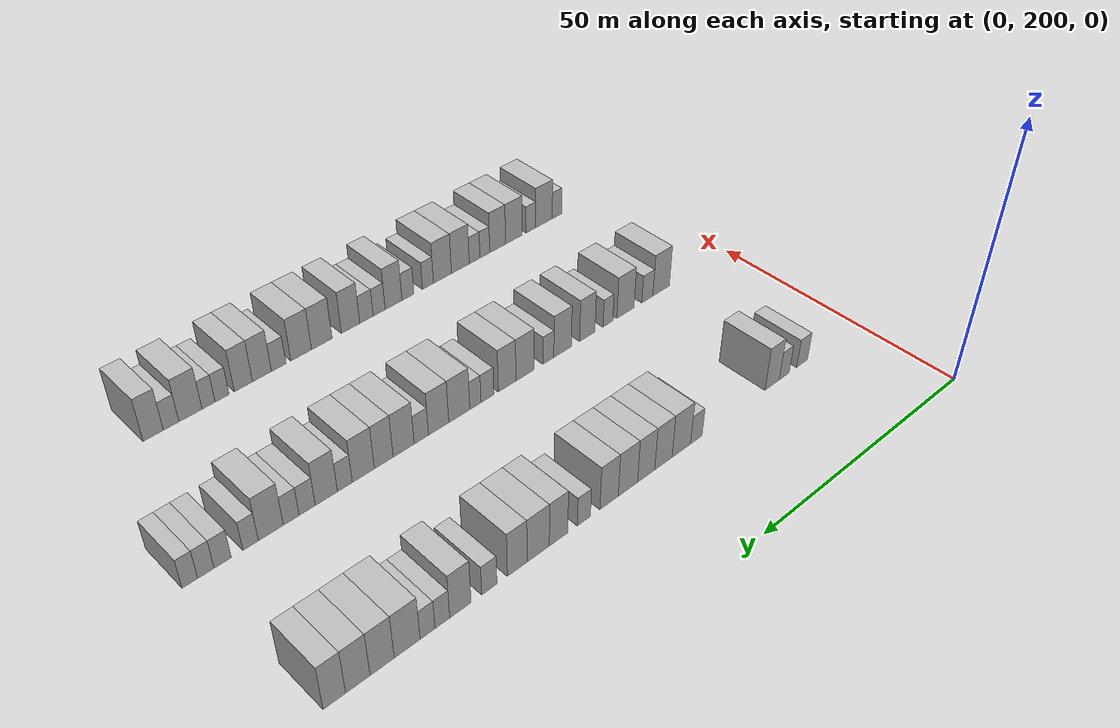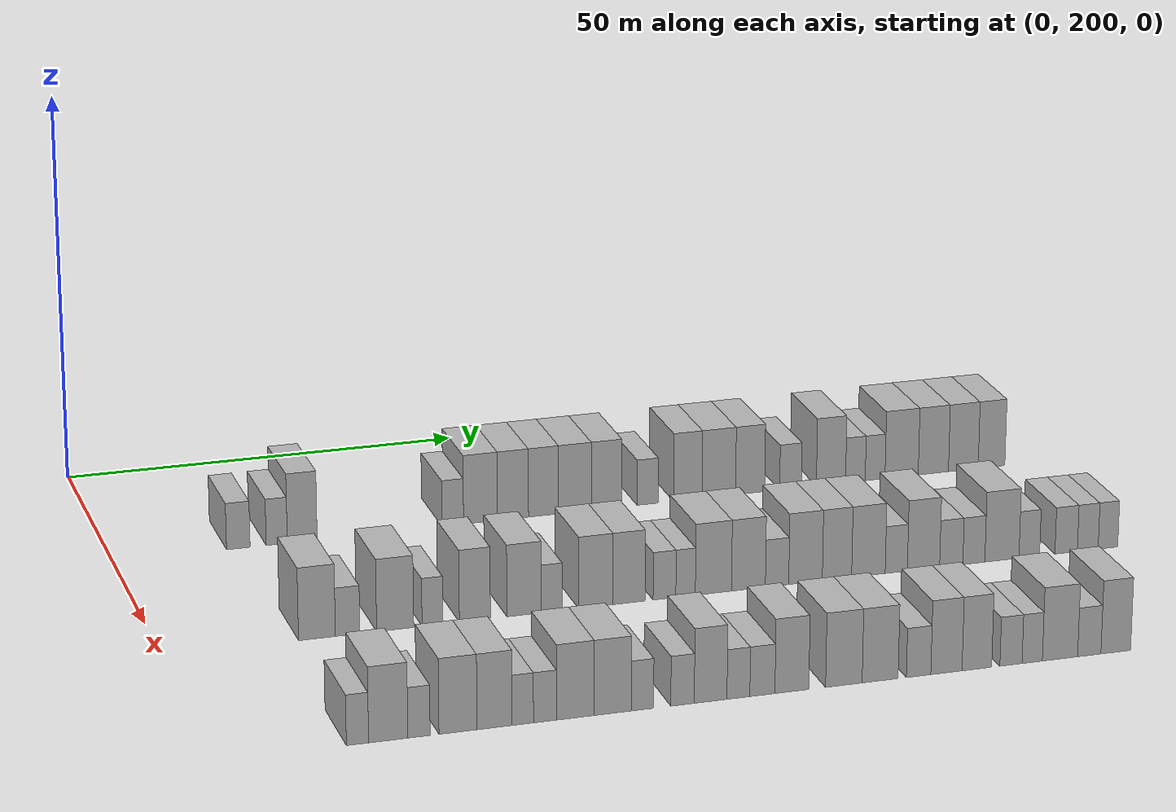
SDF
<sdf version="1.6">
 <world name="default">
  <model name="building_168">
   <static>1</static>
   <pose>25.0000 215.4634 0 0.000000 0.000000 0.000000</pose>
   <link name="link">
    <pose>0 0 3.00 0 0 0</pose>
    <collision name="collision"><geometry><box><size>10.0000 2.9206 6.0000</size></box></geometry></collision>
    <visual name="visual">
     <cast_shadows>0</cast_shadows>
     <geometry><box><size>10.0000 2.9206 6.0000</size></box></geometry>
     <material>
      <script>
       <uri>model://HANNAS_wall/materials/scripts</uri>
       <uri>model://HANNAS_wall/materials/textures</uri>
       <name>vrc/HANNAS_wall</name>
      </script>
     </material>
    </visual>
   </link>
  </model>
  <model name="building_169">
   <static>1</static>
   <pose>25.0000 220.2405 0 0.000000 0.000000 0.000000</pose>
   <link name="link">
    <pose>0 0 3.00 0 0 0</pose>
    <collision name="collision"><geometry><box><size>10.0000 2.6336 6.0000</size></box></geometry></collision>
    <visual name="visual">
     <cast_shadows>0</cast_shadows>
     <geometry><box><size>10.0000 2.6336 6.0000</size></box></geometry>
     <material>
      <script>
       <uri>model://HANNAS_wall/materials/scripts</uri>
       <uri>model://HANNAS_wall/materials/textures</uri>
       <name>vrc/HANNAS_wall</name>
      </script>
     </material>
    </visual>
   </link>
  </model>
  <model name="building_170">
   <static>1</static>
   <pose>25.0000 223.4214 0 0.000000 0.000000 0.000000</pose>
   <link name="link">
    <pose>0 0 4.50 0 0 0</pose>
    <collision name="collision"><geometry><box><size>10.0000 3.7282 9.0000</size></box></geometry></collision>
    <visual name="visual">
     <cast_shadows>0</cast_shadows>
     <geometry><box><size>10.0000 3.7282 9.0000</size></box></geometry>
     <material>
      <script>
       <uri>model://HANNAS_wall/materials/scripts</uri>
       <uri>model://HANNAS_wall/materials/textures</uri>
       <name>vrc/HANNAS_wall</name>
      </script>
     </material>
    </visual>
   </link>
  </model>
  <model name="building_171">
   <static>1</static>
   <pose>25.0000 242.4095 0 0.000000 0.000000 0.000000</pose>
   <link name="link">
    <pose>0 0 3.00 0 0 0</pose>
    <collision name="collision"><geometry><box><size>10.0000 2.7493 6.0000</size></box></geometry></collision>
    <visual name="visual">
     <cast_shadows>0</cast_shadows>
     <geometry><box><size>10.0000 2.7493 6.0000</size></box></geometry>
     <material>
      <script>
       <uri>model://HANNAS_wall/materials/scripts</uri>
       <uri>model://HANNAS_wall/materials/textures</uri>
       <name>vrc/HANNAS_wall</name>
      </script>
     </material>
    </visual>
   </link>
  </model>
  <model name="building_172">
   <static>1</static>
   <pose>25.0000 245.9566 0 0.000000 0.000000 0.000000</pose>
   <link name="link">
    <pose>0 0 4.50 0 0 0</pose>
    <collision name="collision"><geometry><box><size>10.0000 4.3450 9.0000</size></box></geometry></collision>
    <visual name="visual">
     <cast_shadows>0</cast_shadows>
     <geometry><box><size>10.0000 4.3450 9.0000</size></box></geometry>
     <material>
      <script>
       <uri>model://HANNAS_wall/materials/scripts</uri>
       <uri>model://HANNAS_wall/materials/textures</uri>
       <name>vrc/HANNAS_wall</name>
      </script>
     </material>
    </visual>
   </link>
  </model>
  <model name="building_173">
   <static>1</static>
   <pose>25.0000 250.1196 0 0.000000 0.000000 0.000000</pose>
   <link name="link">
    <pose>0 0 4.50 0 0 0</pose>
    <collision name="collision"><geometry><box><size>10.0000 3.9809 9.0000</size></box></geometry></collision>
    <visual name="visual">
     <cast_shadows>0</cast_shadows>
     <geometry><box><size>10.0000 3.9809 9.0000</size></box></geometry>
     <material>
      <script>
       <uri>model://HANNAS_wall/materials/scripts</uri>
       <uri>model://HANNAS_wall/materials/textures</uri>
       <name>vrc/HANNAS_wall</name>
      </script>
     </material>
    </visual>
   </link>
  </model>
  <model name="building_174">
   <static>1</static>
   <pose>25.0000 254.0474 0 0.000000 0.000000 0.000000</pose>
   <link name="link">
    <pose>0 0 4.50 0 0 0</pose>
    <collision name="collision"><geometry><box><size>10.0000 3.8747 9.0000</size></box></geometry></collision>
    <visual name="visual">
     <cast_shadows>0</cast_shadows>
     <geometry><box><size>10.0000 3.8747 9.0000</size></box></geometry>
     <material>
      <script>
       <uri>model://HANNAS_wall/materials/scripts</uri>
       <uri>model://HANNAS_wall/materials/textures</uri>
       <name>vrc/HANNAS_wall</name>
      </script>
     </material>
    </visual>
   </link>
  </model>
  <model name="building_175">
   <static>1</static>
   <pose>25.0000 258.1035 0 0.000000 0.000000 0.000000</pose>
   <link name="link">
    <pose>0 0 4.50 0 0 0</pose>
    <collision name="collision"><geometry><box><size>10.0000 4.2376 9.0000</size></box></geometry></collision>
    <visual name="visual">
     <cast_shadows>0</cast_shadows>
     <geometry><box><size>10.0000 4.2376 9.0000</size></box></geometry>
     <material>
      <script>
       <uri>model://HANNAS_wall/materials/scripts</uri>
       <uri>model://HANNAS_wall/materials/textures</uri>
       <name>vrc/HANNAS_wall</name>
      </script>
     </material>
    </visual>
   </link>
  </model>
  <model name="building_176">
   <static>1</static>
   <pose>25.0000 262.1973 0 0.000000 0.000000 0.000000</pose>
   <link name="link">
    <pose>0 0 4.50 0 0 0</pose>
    <collision name="collision"><geometry><box><size>10.0000 3.9501 9.0000</size></box></geometry></collision>
    <visual name="visual">
     <cast_shadows>0</cast_shadows>
     <geometry><box><size>10.0000 3.9501 9.0000</size></box></geometry>
     <material>
      <script>
       <uri>model://HANNAS_wall/materials/scripts</uri>
       <uri>model://HANNAS_wall/materials/textures</uri>
       <name>vrc/HANNAS_wall</name>
      </script>
     </material>
    </visual>
   </link>
  </model>
  <model name="building_177">
   <static>1</static>
   <pose>25.0000 267.5508 0 0.000000 0.000000 0.000000</pose>
   <link name="link">
    <pose>0 0 3.00 0 0 0</pose>
    <collision name="collision"><geometry><box><size>10.0000 2.7569 6.0000</size></box></geometry></collision>
    <visual name="visual">
     <cast_shadows>0</cast_shadows>
     <geometry><box><size>10.0000 2.7569 6.0000</size></box></geometry>
     <material>
      <script>
       <uri>model://HANNAS_wall/materials/scripts</uri>
       <uri>model://HANNAS_wall/materials/textures</uri>
       <name>vrc/HANNAS_wall</name>
      </script>
     </material>
    </visual>
   </link>
  </model>
  <model name="building_178">
   <static>1</static>
   <pose>25.0000 272.8025 0 0.000000 0.000000 0.000000</pose>
   <link name="link">
    <pose>0 0 4.50 0 0 0</pose>
    <collision name="collision"><geometry><box><size>10.0000 3.7465 9.0000</size></box></geometry></collision>
    <visual name="visual">
     <cast_shadows>0</cast_shadows>
     <geometry><box><size>10.0000 3.7465 9.0000</size></box></geometry>
     <material>
      <script>
       <uri>model://HANNAS_wall/materials/scripts</uri>
       <uri>model://HANNAS_wall/materials/textures</uri>
       <name>vrc/HANNAS_wall</name>
      </script>
     </material>
    </visual>
   </link>
  </model>
  <model name="building_179">
   <static>1</static>
   <pose>25.0000 276.8883 0 0.000000 0.000000 0.000000</pose>
   <link name="link">
    <pose>0 0 4.50 0 0 0</pose>
    <collision name="collision"><geometry><box><size>10.0000 4.4251 9.0000</size></box></geometry></collision>
    <visual name="visual">
     <cast_shadows>0</cast_shadows>
     <geometry><box><size>10.0000 4.4251 9.0000</size></box></geometry>
     <material>
      <script>
       <uri>model://HANNAS_wall/materials/scripts</uri>
       <uri>model://HANNAS_wall/materials/textures</uri>
       <name>vrc/HANNAS_wall</name>
      </script>
     </material>
    </visual>
   </link>
  </model>
  <model name="building_180">
   <static>1</static>
   <pose>25.0000 281.0240 0 0.000000 0.000000 0.000000</pose>
   <link name="link">
    <pose>0 0 4.50 0 0 0</pose>
    <collision name="collision"><geometry><box><size>10.0000 3.8464 9.0000</size></box></geometry></collision>
    <visual name="visual">
     <cast_shadows>0</cast_shadows>
     <geometry><box><size>10.0000 3.8464 9.0000</size></box></geometry>
     <material>
      <script>
       <uri>model://HANNAS_wall/materials/scripts</uri>
       <uri>model://HANNAS_wall/materials/textures</uri>
       <name>vrc/HANNAS_wall</name>
      </script>
     </material>
    </visual>
   </link>
  </model>
  <model name="building_181">
   <static>1</static>
   <pose>25.0000 286.3899 0 0.000000 0.000000 0.000000</pose>
   <link name="link">
    <pose>0 0 3.00 0 0 0</pose>
    <collision name="collision"><geometry><box><size>10.0000 2.8854 6.0000</size></box></geometry></collision>
    <visual name="visual">
     <cast_shadows>0</cast_shadows>
     <geometry><box><size>10.0000 2.8854 6.0000</size></box></geometry>
     <material>
      <script>
       <uri>model://HANNAS_wall/materials/scripts</uri>
       <uri>model://HANNAS_wall/materials/textures</uri>
       <name>vrc/HANNAS_wall</name>
      </script>
     </material>
    </visual>
   </link>
  </model>
  <model name="building_182">
   <static>1</static>
   <pose>25.0000 291.7846 0 0.000000 0.000000 0.000000</pose>
   <link name="link">
    <pose>0 0 4.50 0 0 0</pose>
    <collision name="collision"><geometry><box><size>10.0000 3.9039 9.0000</size></box></geometry></collision>
    <visual name="visual">
     <cast_shadows>0</cast_shadows>
     <geometry><box><size>10.0000 3.9039 9.0000</size></box></geometry>
     <material>
      <script>
       <uri>model://HANNAS_wall/materials/scripts</uri>
       <uri>model://HANNAS_wall/materials/textures</uri>
       <name>vrc/HANNAS_wall</name>
      </script>
     </material>
    </visual>
   </link>
  </model>
  <model name="building_183">
   <static>1</static>
   <pose>25.0000 295.0588 0 0.000000 0.000000 0.000000</pose>
   <link name="link">
    <pose>0 0 3.00 0 0 0</pose>
    <collision name="collision"><geometry><box><size>10.0000 2.6446 6.0000</size></box></geometry></collision>
    <visual name="visual">
     <cast_shadows>0</cast_shadows>
     <geometry><box><size>10.0000 2.6446 6.0000</size></box></geometry>
     <material>
      <script>
       <uri>model://HANNAS_wall/materials/scripts</uri>
       <uri>model://HANNAS_wall/materials/textures</uri>
       <name>vrc/HANNAS_wall</name>
      </script>
     </material>
    </visual>
   </link>
  </model>
  <model name="building_184">
   <static>1</static>
   <pose>25.0000 297.7084 0 0.000000 0.000000 0.000000</pose>
   <link name="link">
    <pose>0 0 3.00 0 0 0</pose>
    <collision name="collision"><geometry><box><size>10.0000 2.6544 6.0000</size></box></geometry></collision>
    <visual name="visual">
     <cast_shadows>0</cast_shadows>
     <geometry><box><size>10.0000 2.6544 6.0000</size></box></geometry>
     <material>
      <script>
       <uri>model://HANNAS_wall/materials/scripts</uri>
       <uri>model://HANNAS_wall/materials/textures</uri>
       <name>vrc/HANNAS_wall</name>
      </script>
     </material>
    </visual>
   </link>
  </model>
  <model name="building_185">
   <static>1</static>
   <pose>25.0000 301.2821 0 0.000000 0.000000 0.000000</pose>
   <link name="link">
    <pose>0 0 4.50 0 0 0</pose>
    <collision name="collision"><geometry><box><size>10.0000 4.4930 9.0000</size></box></geometry></collision>
    <visual name="visual">
     <cast_shadows>0</cast_shadows>
     <geometry><box><size>10.0000 4.4930 9.0000</size></box></geometry>
     <material>
      <script>
       <uri>model://HANNAS_wall/materials/scripts</uri>
       <uri>model://HANNAS_wall/materials/textures</uri>
       <name>vrc/HANNAS_wall</name>
      </script>
     </material>
    </visual>
   </link>
  </model>
  <model name="building_186">
   <static>1</static>
   <pose>25.0000 305.5768 0 0.000000 0.000000 0.000000</pose>
   <link name="link">
    <pose>0 0 4.50 0 0 0</pose>
    <collision name="collision"><geometry><box><size>10.0000 4.0964 9.0000</size></box></geometry></collision>
    <visual name="visual">
     <cast_shadows>0</cast_shadows>
     <geometry><box><size>10.0000 4.0964 9.0000</size></box></geometry>
     <material>
      <script>
       <uri>model://HANNAS_wall/materials/scripts</uri>
       <uri>model://HANNAS_wall/materials/textures</uri>
       <name>vrc/HANNAS_wall</name>
      </script>
     </material>
    </visual>
   </link>
  </model>
  <model name="building_187">
   <static>1</static>
   <pose>25.0000 309.6455 0 0.000000 0.000000 0.000000</pose>
   <link name="link">
    <pose>0 0 4.50 0 0 0</pose>
    <collision name="collision"><geometry><box><size>10.0000 4.0412 9.0000</size></box></geometry></collision>
    <visual name="visual">
     <cast_shadows>0</cast_shadows>
     <geometry><box><size>10.0000 4.0412 9.0000</size></box></geometry>
     <material>
      <script>
       <uri>model://HANNAS_wall/materials/scripts</uri>
       <uri>model://HANNAS_wall/materials/textures</uri>
       <name>vrc/HANNAS_wall</name>
      </script>
     </material>
    </visual>
   </link>
  </model>
  <model name="building_188">
   <static>1</static>
   <pose>25.0000 313.4915 0 0.000000 0.000000 0.000000</pose>
   <link name="link">
    <pose>0 0 4.50 0 0 0</pose>
    <collision name="collision"><geometry><box><size>10.0000 3.6508 9.0000</size></box></geometry></collision>
    <visual name="visual">
     <cast_shadows>0</cast_shadows>
     <geometry><box><size>10.0000 3.6508 9.0000</size></box></geometry>
     <material>
      <script>
       <uri>model://HANNAS_wall/materials/scripts</uri>
       <uri>model://HANNAS_wall/materials/textures</uri>
       <name>vrc/HANNAS_wall</name>
      </script>
     </material>
    </visual>
   </link>
  </model>
  <model name="building_396">
   <static>1</static>
   <pose>55.0000 218.1763 0 0.000000 0.000000 0.000000</pose>
   <link name="link">
    <pose>0 0 4.50 0 0 0</pose>
    <collision name="collision"><geometry><box><size>10.0000 4.3644 9.0000</size></box></geometry></collision>
    <visual name="visual">
     <cast_shadows>0</cast_shadows>
     <geometry><box><size>10.0000 4.3644 9.0000</size></box></geometry>
     <material>
      <script>
       <uri>model://HANNAS_wall/materials/scripts</uri>
       <uri>model://HANNAS_wall/materials/textures</uri>
       <name>vrc/HANNAS_wall</name>
      </script>
     </material>
    </visual>
   </link>
  </model>
  <model name="building_397">
   <static>1</static>
   <pose>55.0000 221.8111 0 0.000000 0.000000 0.000000</pose>
   <link name="link">
    <pose>0 0 3.00 0 0 0</pose>
    <collision name="collision"><geometry><box><size>10.0000 2.9052 6.0000</size></box></geometry></collision>
    <visual name="visual">
     <cast_shadows>0</cast_shadows>
     <geometry><box><size>10.0000 2.9052 6.0000</size></box></geometry>
     <material>
      <script>
       <uri>model://HANNAS_wall/materials/scripts</uri>
       <uri>model://HANNAS_wall/materials/textures</uri>
       <name>vrc/HANNAS_wall</name>
      </script>
     </material>
    </visual>
   </link>
  </model>
  <model name="building_398">
   <static>1</static>
   <pose>55.0000 227.4796 0 0.000000 0.000000 0.000000</pose>
   <link name="link">
    <pose>0 0 4.50 0 0 0</pose>
    <collision name="collision"><geometry><box><size>10.0000 4.4318 9.0000</size></box></geometry></collision>
    <visual name="visual">
     <cast_shadows>0</cast_shadows>
     <geometry><box><size>10.0000 4.4318 9.0000</size></box></geometry>
     <material>
      <script>
       <uri>model://HANNAS_wall/materials/scripts</uri>
       <uri>model://HANNAS_wall/materials/textures</uri>
       <name>vrc/HANNAS_wall</name>
      </script>
     </material>
    </visual>
   </link>
  </model>
  <model name="building_399">
   <static>1</static>
   <pose>55.0000 231.9386 0 0.000000 0.000000 0.000000</pose>
   <link name="link">
    <pose>0 0 3.00 0 0 0</pose>
    <collision name="collision"><geometry><box><size>10.0000 2.4862 6.0000</size></box></geometry></collision>
    <visual name="visual">
     <cast_shadows>0</cast_shadows>
     <geometry><box><size>10.0000 2.4862 6.0000</size></box></geometry>
     <material>
      <script>
       <uri>model://HANNAS_wall/materials/scripts</uri>
       <uri>model://HANNAS_wall/materials/textures</uri>
       <name>vrc/HANNAS_wall</name>
      </script>
     </material>
    </visual>
   </link>
  </model>
  <model name="building_400">
   <static>1</static>
   <pose>55.0000 237.0544 0 0.000000 0.000000 0.000000</pose>
   <link name="link">
    <pose>0 0 4.50 0 0 0</pose>
    <collision name="collision"><geometry><box><size>10.0000 3.7454 9.0000</size></box></geometry></collision>
    <visual name="visual">
     <cast_shadows>0</cast_shadows>
     <geometry><box><size>10.0000 3.7454 9.0000</size></box></geometry>
     <material>
      <script>
       <uri>model://HANNAS_wall/materials/scripts</uri>
       <uri>model://HANNAS_wall/materials/textures</uri>
       <name>vrc/HANNAS_wall</name>
      </script>
     </material>
    </visual>
   </link>
  </model>
  <model name="building_401">
   <static>1</static>
   <pose>55.0000 243.0165 0 0.000000 0.000000 0.000000</pose>
   <link name="link">
    <pose>0 0 4.50 0 0 0</pose>
    <collision name="collision"><geometry><box><size>10.0000 4.1788 9.0000</size></box></geometry></collision>
    <visual name="visual">
     <cast_shadows>0</cast_shadows>
     <geometry><box><size>10.0000 4.1788 9.0000</size></box></geometry>
     <material>
      <script>
       <uri>model://HANNAS_wall/materials/scripts</uri>
       <uri>model://HANNAS_wall/materials/textures</uri>
       <name>vrc/HANNAS_wall</name>
      </script>
     </material>
    </visual>
   </link>
  </model>
  <model name="building_402">
   <static>1</static>
   <pose>55.0000 246.3823 0 0.000000 0.000000 0.000000</pose>
   <link name="link">
    <pose>0 0 3.00 0 0 0</pose>
    <collision name="collision"><geometry><box><size>10.0000 2.5527 6.0000</size></box></geometry></collision>
    <visual name="visual">
     <cast_shadows>0</cast_shadows>
     <geometry><box><size>10.0000 2.5527 6.0000</size></box></geometry>
     <material>
      <script>
       <uri>model://HANNAS_wall/materials/scripts</uri>
       <uri>model://HANNAS_wall/materials/textures</uri>
       <name>vrc/HANNAS_wall</name>
      </script>
     </material>
    </visual>
   </link>
  </model>
  <model name="building_403">
   <static>1</static>
   <pose>55.0000 251.7626 0 0.000000 0.000000 0.000000</pose>
   <link name="link">
    <pose>0 0 4.50 0 0 0</pose>
    <collision name="collision"><geometry><box><size>10.0000 4.2079 9.0000</size></box></geometry></collision>
    <visual name="visual">
     <cast_shadows>0</cast_shadows>
     <geometry><box><size>10.0000 4.2079 9.0000</size></box></geometry>
     <material>
      <script>
       <uri>model://HANNAS_wall/materials/scripts</uri>
       <uri>model://HANNAS_wall/materials/textures</uri>
       <name>vrc/HANNAS_wall</name>
      </script>
     </material>
    </visual>
   </link>
  </model>
  <model name="building_404">
   <static>1</static>
   <pose>55.0000 255.8451 0 0.000000 0.000000 0.000000</pose>
   <link name="link">
    <pose>0 0 4.50 0 0 0</pose>
    <collision name="collision"><geometry><box><size>10.0000 3.9569 9.0000</size></box></geometry></collision>
    <visual name="visual">
     <cast_shadows>0</cast_shadows>
     <geometry><box><size>10.0000 3.9569 9.0000</size></box></geometry>
     <material>
      <script>
       <uri>model://HANNAS_wall/materials/scripts</uri>
       <uri>model://HANNAS_wall/materials/textures</uri>
       <name>vrc/HANNAS_wall</name>
      </script>
     </material>
    </visual>
   </link>
  </model>
  <model name="building_405">
   <static>1</static>
   <pose>55.0000 260.2306 0 0.000000 0.000000 0.000000</pose>
   <link name="link">
    <pose>0 0 3.00 0 0 0</pose>
    <collision name="collision"><geometry><box><size>10.0000 2.8141 6.0000</size></box></geometry></collision>
    <visual name="visual">
     <cast_shadows>0</cast_shadows>
     <geometry><box><size>10.0000 2.8141 6.0000</size></box></geometry>
     <material>
      <script>
       <uri>model://HANNAS_wall/materials/scripts</uri>
       <uri>model://HANNAS_wall/materials/textures</uri>
       <name>vrc/HANNAS_wall</name>
      </script>
     </material>
    </visual>
   </link>
  </model>
  <model name="building_406">
   <static>1</static>
   <pose>55.0000 262.8479 0 0.000000 0.000000 0.000000</pose>
   <link name="link">
    <pose>0 0 3.00 0 0 0</pose>
    <collision name="collision"><geometry><box><size>10.0000 2.4206 6.0000</size></box></geometry></collision>
    <visual name="visual">
     <cast_shadows>0</cast_shadows>
     <geometry><box><size>10.0000 2.4206 6.0000</size></box></geometry>
     <material>
      <script>
       <uri>model://HANNAS_wall/materials/scripts</uri>
       <uri>model://HANNAS_wall/materials/textures</uri>
       <name>vrc/HANNAS_wall</name>
      </script>
     </material>
    </visual>
   </link>
  </model>
  <model name="building_407">
   <static>1</static>
   <pose>55.0000 266.3082 0 0.000000 0.000000 0.000000</pose>
   <link name="link">
    <pose>0 0 4.50 0 0 0</pose>
    <collision name="collision"><geometry><box><size>10.0000 4.4999 9.0000</size></box></geometry></collision>
    <visual name="visual">
     <cast_shadows>0</cast_shadows>
     <geometry><box><size>10.0000 4.4999 9.0000</size></box></geometry>
     <material>
      <script>
       <uri>model://HANNAS_wall/materials/scripts</uri>
       <uri>model://HANNAS_wall/materials/textures</uri>
       <name>vrc/HANNAS_wall</name>
      </script>
     </material>
    </visual>
   </link>
  </model>
  <model name="building_408">
   <static>1</static>
   <pose>55.0000 270.6790 0 0.000000 0.000000 0.000000</pose>
   <link name="link">
    <pose>0 0 4.50 0 0 0</pose>
    <collision name="collision"><geometry><box><size>10.0000 4.2417 9.0000</size></box></geometry></collision>
    <visual name="visual">
     <cast_shadows>0</cast_shadows>
     <geometry><box><size>10.0000 4.2417 9.0000</size></box></geometry>
     <material>
      <script>
       <uri>model://HANNAS_wall/materials/scripts</uri>
       <uri>model://HANNAS_wall/materials/textures</uri>
       <name>vrc/HANNAS_wall</name>
      </script>
     </material>
    </visual>
   </link>
  </model>
  <model name="building_409">
   <static>1</static>
   <pose>55.0000 274.2663 0 0.000000 0.000000 0.000000</pose>
   <link name="link">
    <pose>0 0 3.00 0 0 0</pose>
    <collision name="collision"><geometry><box><size>10.0000 2.9328 6.0000</size></box></geometry></collision>
    <visual name="visual">
     <cast_shadows>0</cast_shadows>
     <geometry><box><size>10.0000 2.9328 6.0000</size></box></geometry>
     <material>
      <script>
       <uri>model://HANNAS_wall/materials/scripts</uri>
       <uri>model://HANNAS_wall/materials/textures</uri>
       <name>vrc/HANNAS_wall</name>
      </script>
     </material>
    </visual>
   </link>
  </model>
  <model name="building_410">
   <static>1</static>
   <pose>55.0000 277.8479 0 0.000000 0.000000 0.000000</pose>
   <link name="link">
    <pose>0 0 4.50 0 0 0</pose>
    <collision name="collision"><geometry><box><size>10.0000 4.2304 9.0000</size></box></geometry></collision>
    <visual name="visual">
     <cast_shadows>0</cast_shadows>
     <geometry><box><size>10.0000 4.2304 9.0000</size></box></geometry>
     <material>
      <script>
       <uri>model://HANNAS_wall/materials/scripts</uri>
       <uri>model://HANNAS_wall/materials/textures</uri>
       <name>vrc/HANNAS_wall</name>
      </script>
     </material>
    </visual>
   </link>
  </model>
  <model name="building_411">
   <static>1</static>
   <pose>55.0000 281.8187 0 0.000000 0.000000 0.000000</pose>
   <link name="link">
    <pose>0 0 4.50 0 0 0</pose>
    <collision name="collision"><geometry><box><size>10.0000 3.7113 9.0000</size></box></geometry></collision>
    <visual name="visual">
     <cast_shadows>0</cast_shadows>
     <geometry><box><size>10.0000 3.7113 9.0000</size></box></geometry>
     <material>
      <script>
       <uri>model://HANNAS_wall/materials/scripts</uri>
       <uri>model://HANNAS_wall/materials/textures</uri>
       <name>vrc/HANNAS_wall</name>
      </script>
     </material>
    </visual>
   </link>
  </model>
  <model name="building_412">
   <static>1</static>
   <pose>55.0000 285.8071 0 0.000000 0.000000 0.000000</pose>
   <link name="link">
    <pose>0 0 4.50 0 0 0</pose>
    <collision name="collision"><geometry><box><size>10.0000 4.2655 9.0000</size></box></geometry></collision>
    <visual name="visual">
     <cast_shadows>0</cast_shadows>
     <geometry><box><size>10.0000 4.2655 9.0000</size></box></geometry>
     <material>
      <script>
       <uri>model://HANNAS_wall/materials/scripts</uri>
       <uri>model://HANNAS_wall/materials/textures</uri>
       <name>vrc/HANNAS_wall</name>
      </script>
     </material>
    </visual>
   </link>
  </model>
  <model name="building_413">
   <static>1</static>
   <pose>55.0000 289.3525 0 0.000000 0.000000 0.000000</pose>
   <link name="link">
    <pose>0 0 3.00 0 0 0</pose>
    <collision name="collision"><geometry><box><size>10.0000 2.8253 6.0000</size></box></geometry></collision>
    <visual name="visual">
     <cast_shadows>0</cast_shadows>
     <geometry><box><size>10.0000 2.8253 6.0000</size></box></geometry>
     <material>
      <script>
       <uri>model://HANNAS_wall/materials/scripts</uri>
       <uri>model://HANNAS_wall/materials/textures</uri>
       <name>vrc/HANNAS_wall</name>
      </script>
     </material>
    </visual>
   </link>
  </model>
  <model name="building_414">
   <static>1</static>
   <pose>55.0000 292.8333 0 0.000000 0.000000 0.000000</pose>
   <link name="link">
    <pose>0 0 4.50 0 0 0</pose>
    <collision name="collision"><geometry><box><size>10.0000 4.1363 9.0000</size></box></geometry></collision>
    <visual name="visual">
     <cast_shadows>0</cast_shadows>
     <geometry><box><size>10.0000 4.1363 9.0000</size></box></geometry>
     <material>
      <script>
       <uri>model://HANNAS_wall/materials/scripts</uri>
       <uri>model://HANNAS_wall/materials/textures</uri>
       <name>vrc/HANNAS_wall</name>
      </script>
     </material>
    </visual>
   </link>
  </model>
  <model name="building_415">
   <static>1</static>
   <pose>55.0000 296.3919 0 0.000000 0.000000 0.000000</pose>
   <link name="link">
    <pose>0 0 3.00 0 0 0</pose>
    <collision name="collision"><geometry><box><size>10.0000 2.9810 6.0000</size></box></geometry></collision>
    <visual name="visual">
     <cast_shadows>0</cast_shadows>
     <geometry><box><size>10.0000 2.9810 6.0000</size></box></geometry>
     <material>
      <script>
       <uri>model://HANNAS_wall/materials/scripts</uri>
       <uri>model://HANNAS_wall/materials/textures</uri>
       <name>vrc/HANNAS_wall</name>
      </script>
     </material>
    </visual>
   </link>
  </model>
  <model name="building_416">
   <static>1</static>
   <pose>55.0000 299.3000 0 0.000000 0.000000 0.000000</pose>
   <link name="link">
    <pose>0 0 3.00 0 0 0</pose>
    <collision name="collision"><geometry><box><size>10.0000 2.8351 6.0000</size></box></geometry></collision>
    <visual name="visual">
     <cast_shadows>0</cast_shadows>
     <geometry><box><size>10.0000 2.8351 6.0000</size></box></geometry>
     <material>
      <script>
       <uri>model://HANNAS_wall/materials/scripts</uri>
       <uri>model://HANNAS_wall/materials/textures</uri>
       <name>vrc/HANNAS_wall</name>
      </script>
     </material>
    </visual>
   </link>
  </model>
  <model name="building_417">
   <static>1</static>
   <pose>55.0000 302.9246 0 0.000000 0.000000 0.000000</pose>
   <link name="link">
    <pose>0 0 4.50 0 0 0</pose>
    <collision name="collision"><geometry><box><size>10.0000 4.4143 9.0000</size></box></geometry></collision>
    <visual name="visual">
     <cast_shadows>0</cast_shadows>
     <geometry><box><size>10.0000 4.4143 9.0000</size></box></geometry>
     <material>
      <script>
       <uri>model://HANNAS_wall/materials/scripts</uri>
       <uri>model://HANNAS_wall/materials/textures</uri>
       <name>vrc/HANNAS_wall</name>
      </script>
     </material>
    </visual>
   </link>
  </model>
  <model name="building_418">
   <static>1</static>
   <pose>55.0000 306.4719 0 0.000000 0.000000 0.000000</pose>
   <link name="link">
    <pose>0 0 3.00 0 0 0</pose>
    <collision name="collision"><geometry><box><size>10.0000 2.6803 6.0000</size></box></geometry></collision>
    <visual name="visual">
     <cast_shadows>0</cast_shadows>
     <geometry><box><size>10.0000 2.6803 6.0000</size></box></geometry>
     <material>
      <script>
       <uri>model://HANNAS_wall/materials/scripts</uri>
       <uri>model://HANNAS_wall/materials/textures</uri>
       <name>vrc/HANNAS_wall</name>
      </script>
     </material>
    </visual>
   </link>
  </model>
  <model name="building_419">
   <static>1</static>
   <pose>55.0000 311.2719 0 0.000000 0.000000 0.000000</pose>
   <link name="link">
    <pose>0 0 3.00 0 0 0</pose>
    <collision name="collision"><geometry><box><size>10.0000 2.9197 6.0000</size></box></geometry></collision>
    <visual name="visual">
     <cast_shadows>0</cast_shadows>
     <geometry><box><size>10.0000 2.9197 6.0000</size></box></geometry>
     <material>
      <script>
       <uri>model://HANNAS_wall/materials/scripts</uri>
       <uri>model://HANNAS_wall/materials/textures</uri>
       <name>vrc/HANNAS_wall</name>
      </script>
     </material>
    </visual>
   </link>
  </model>
  <model name="building_420">
   <static>1</static>
   <pose>55.0000 314.0933 0 0.000000 0.000000 0.000000</pose>
   <link name="link">
    <pose>0 0 3.00 0 0 0</pose>
    <collision name="collision"><geometry><box><size>10.0000 2.7229 6.0000</size></box></geometry></collision>
    <visual name="visual">
     <cast_shadows>0</cast_shadows>
     <geometry><box><size>10.0000 2.7229 6.0000</size></box></geometry>
     <material>
      <script>
       <uri>model://HANNAS_wall/materials/scripts</uri>
       <uri>model://HANNAS_wall/materials/textures</uri>
       <name>vrc/HANNAS_wall</name>
      </script>
     </material>
    </visual>
   </link>
  </model>
  <model name="building_421">
   <static>1</static>
   <pose>55.0000 316.7373 0 0.000000 0.000000 0.000000</pose>
   <link name="link">
    <pose>0 0 3.00 0 0 0</pose>
    <collision name="collision"><geometry><box><size>10.0000 2.5651 6.0000</size></box></geometry></collision>
    <visual name="visual">
     <cast_shadows>0</cast_shadows>
     <geometry><box><size>10.0000 2.5651 6.0000</size></box></geometry>
     <material>
      <script>
       <uri>model://HANNAS_wall/materials/scripts</uri>
       <uri>model://HANNAS_wall/materials/textures</uri>
       <name>vrc/HANNAS_wall</name>
      </script>
     </material>
    </visual>
   </link>
  </model>
  <model name="building_612">
   <static>1</static>
   <pose>85.0000 215.6151 0 0.000000 0.000000 0.000000</pose>
   <link name="link">
    <pose>0 0 3.00 0 0 0</pose>
    <collision name="collision"><geometry><box><size>10.0000 2.4947 6.0000</size></box></geometry></collision>
    <visual name="visual">
     <cast_shadows>0</cast_shadows>
     <geometry><box><size>10.0000 2.4947 6.0000</size></box></geometry>
     <material>
      <script>
       <uri>model://HANNAS_wall/materials/scripts</uri>
       <uri>model://HANNAS_wall/materials/textures</uri>
       <name>vrc/HANNAS_wall</name>
      </script>
     </material>
    </visual>
   </link>
  </model>
  <model name="building_613">
   <static>1</static>
   <pose>85.0000 219.0723 0 0.000000 0.000000 0.000000</pose>
   <link name="link">
    <pose>0 0 4.50 0 0 0</pose>
    <collision name="collision"><geometry><box><size>10.0000 4.4198 9.0000</size></box></geometry></collision>
    <visual name="visual">
     <cast_shadows>0</cast_shadows>
     <geometry><box><size>10.0000 4.4198 9.0000</size></box></geometry>
     <material>
      <script>
       <uri>model://HANNAS_wall/materials/scripts</uri>
       <uri>model://HANNAS_wall/materials/textures</uri>
       <name>vrc/HANNAS_wall</name>
      </script>
     </material>
    </visual>
   </link>
  </model>
  <model name="building_614">
   <static>1</static>
   <pose>85.0000 222.5392 0 0.000000 0.000000 0.000000</pose>
   <link name="link">
    <pose>0 0 3.00 0 0 0</pose>
    <collision name="collision"><geometry><box><size>10.0000 2.5138 6.0000</size></box></geometry></collision>
    <visual name="visual">
     <cast_shadows>0</cast_shadows>
     <geometry><box><size>10.0000 2.5138 6.0000</size></box></geometry>
     <material>
      <script>
       <uri>model://HANNAS_wall/materials/scripts</uri>
       <uri>model://HANNAS_wall/materials/textures</uri>
       <name>vrc/HANNAS_wall</name>
      </script>
     </material>
    </visual>
   </link>
  </model>
  <model name="building_615">
   <static>1</static>
   <pose>85.0000 226.9524 0 0.000000 0.000000 0.000000</pose>
   <link name="link">
    <pose>0 0 4.50 0 0 0</pose>
    <collision name="collision"><geometry><box><size>10.0000 4.3127 9.0000</size></box></geometry></collision>
    <visual name="visual">
     <cast_shadows>0</cast_shadows>
     <geometry><box><size>10.0000 4.3127 9.0000</size></box></geometry>
     <material>
      <script>
       <uri>model://HANNAS_wall/materials/scripts</uri>
       <uri>model://HANNAS_wall/materials/textures</uri>
       <name>vrc/HANNAS_wall</name>
      </script>
     </material>
    </visual>
   </link>
  </model>
  <model name="building_616">
   <static>1</static>
   <pose>85.0000 231.1137 0 0.000000 0.000000 0.000000</pose>
   <link name="link">
    <pose>0 0 4.50 0 0 0</pose>
    <collision name="collision"><geometry><box><size>10.0000 4.0098 9.0000</size></box></geometry></collision>
    <visual name="visual">
     <cast_shadows>0</cast_shadows>
     <geometry><box><size>10.0000 4.0098 9.0000</size></box></geometry>
     <material>
      <script>
       <uri>model://HANNAS_wall/materials/scripts</uri>
       <uri>model://HANNAS_wall/materials/textures</uri>
       <name>vrc/HANNAS_wall</name>
      </script>
     </material>
    </visual>
   </link>
  </model>
  <model name="building_617">
   <static>1</static>
   <pose>85.0000 234.3413 0 0.000000 0.000000 0.000000</pose>
   <link name="link">
    <pose>0 0 3.00 0 0 0</pose>
    <collision name="collision"><geometry><box><size>10.0000 2.4454 6.0000</size></box></geometry></collision>
    <visual name="visual">
     <cast_shadows>0</cast_shadows>
     <geometry><box><size>10.0000 2.4454 6.0000</size></box></geometry>
     <material>
      <script>
       <uri>model://HANNAS_wall/materials/scripts</uri>
       <uri>model://HANNAS_wall/materials/textures</uri>
       <name>vrc/HANNAS_wall</name>
      </script>
     </material>
    </visual>
   </link>
  </model>
  <model name="building_618">
   <static>1</static>
   <pose>85.0000 236.8837 0 0.000000 0.000000 0.000000</pose>
   <link name="link">
    <pose>0 0 3.00 0 0 0</pose>
    <collision name="collision"><geometry><box><size>10.0000 2.6394 6.0000</size></box></geometry></collision>
    <visual name="visual">
     <cast_shadows>0</cast_shadows>
     <geometry><box><size>10.0000 2.6394 6.0000</size></box></geometry>
     <material>
      <script>
       <uri>model://HANNAS_wall/materials/scripts</uri>
       <uri>model://HANNAS_wall/materials/textures</uri>
       <name>vrc/HANNAS_wall</name>
      </script>
     </material>
    </visual>
   </link>
  </model>
  <model name="building_619">
   <static>1</static>
   <pose>85.0000 240.3800 0 0.000000 0.000000 0.000000</pose>
   <link name="link">
    <pose>0 0 4.50 0 0 0</pose>
    <collision name="collision"><geometry><box><size>10.0000 4.3532 9.0000</size></box></geometry></collision>
    <visual name="visual">
     <cast_shadows>0</cast_shadows>
     <geometry><box><size>10.0000 4.3532 9.0000</size></box></geometry>
     <material>
      <script>
       <uri>model://HANNAS_wall/materials/scripts</uri>
       <uri>model://HANNAS_wall/materials/textures</uri>
       <name>vrc/HANNAS_wall</name>
      </script>
     </material>
    </visual>
   </link>
  </model>
  <model name="building_620">
   <static>1</static>
   <pose>85.0000 244.7063 0 0.000000 0.000000 0.000000</pose>
   <link name="link">
    <pose>0 0 4.50 0 0 0</pose>
    <collision name="collision"><geometry><box><size>10.0000 4.2993 9.0000</size></box></geometry></collision>
    <visual name="visual">
     <cast_shadows>0</cast_shadows>
     <geometry><box><size>10.0000 4.2993 9.0000</size></box></geometry>
     <material>
      <script>
       <uri>model://HANNAS_wall/materials/scripts</uri>
       <uri>model://HANNAS_wall/materials/textures</uri>
       <name>vrc/HANNAS_wall</name>
      </script>
     </material>
    </visual>
   </link>
  </model>
  <model name="building_621">
   <static>1</static>
   <pose>85.0000 248.1531 0 0.000000 0.000000 0.000000</pose>
   <link name="link">
    <pose>0 0 3.00 0 0 0</pose>
    <collision name="collision"><geometry><box><size>10.0000 2.5944 6.0000</size></box></geometry></collision>
    <visual name="visual">
     <cast_shadows>0</cast_shadows>
     <geometry><box><size>10.0000 2.5944 6.0000</size></box></geometry>
     <material>
      <script>
       <uri>model://HANNAS_wall/materials/scripts</uri>
       <uri>model://HANNAS_wall/materials/textures</uri>
       <name>vrc/HANNAS_wall</name>
      </script>
     </material>
    </visual>
   </link>
  </model>
  <model name="building_622">
   <static>1</static>
   <pose>85.0000 252.8230 0 0.000000 0.000000 0.000000</pose>
   <link name="link">
    <pose>0 0 3.00 0 0 0</pose>
    <collision name="collision"><geometry><box><size>10.0000 2.7455 6.0000</size></box></geometry></collision>
    <visual name="visual">
     <cast_shadows>0</cast_shadows>
     <geometry><box><size>10.0000 2.7455 6.0000</size></box></geometry>
     <material>
      <script>
       <uri>model://HANNAS_wall/materials/scripts</uri>
       <uri>model://HANNAS_wall/materials/textures</uri>
       <name>vrc/HANNAS_wall</name>
      </script>
     </material>
    </visual>
   </link>
  </model>
  <model name="building_623">
   <static>1</static>
   <pose>85.0000 256.1112 0 0.000000 0.000000 0.000000</pose>
   <link name="link">
    <pose>0 0 4.50 0 0 0</pose>
    <collision name="collision"><geometry><box><size>10.0000 3.8308 9.0000</size></box></geometry></collision>
    <visual name="visual">
     <cast_shadows>0</cast_shadows>
     <geometry><box><size>10.0000 3.8308 9.0000</size></box></geometry>
     <material>
      <script>
       <uri>model://HANNAS_wall/materials/scripts</uri>
       <uri>model://HANNAS_wall/materials/textures</uri>
       <name>vrc/HANNAS_wall</name>
      </script>
     </material>
    </visual>
   </link>
  </model>
  <model name="building_624">
   <static>1</static>
   <pose>85.0000 259.3723 0 0.000000 0.000000 0.000000</pose>
   <link name="link">
    <pose>0 0 3.00 0 0 0</pose>
    <collision name="collision"><geometry><box><size>10.0000 2.6914 6.0000</size></box></geometry></collision>
    <visual name="visual">
     <cast_shadows>0</cast_shadows>
     <geometry><box><size>10.0000 2.6914 6.0000</size></box></geometry>
     <material>
      <script>
       <uri>model://HANNAS_wall/materials/scripts</uri>
       <uri>model://HANNAS_wall/materials/textures</uri>
       <name>vrc/HANNAS_wall</name>
      </script>
     </material>
    </visual>
   </link>
  </model>
  <model name="building_625">
   <static>1</static>
   <pose>85.0000 262.1985 0 0.000000 0.000000 0.000000</pose>
   <link name="link">
    <pose>0 0 3.00 0 0 0</pose>
    <collision name="collision"><geometry><box><size>10.0000 2.9611 6.0000</size></box></geometry></collision>
    <visual name="visual">
     <cast_shadows>0</cast_shadows>
     <geometry><box><size>10.0000 2.9611 6.0000</size></box></geometry>
     <material>
      <script>
       <uri>model://HANNAS_wall/materials/scripts</uri>
       <uri>model://HANNAS_wall/materials/textures</uri>
       <name>vrc/HANNAS_wall</name>
      </script>
     </material>
    </visual>
   </link>
  </model>
  <model name="building_626">
   <static>1</static>
   <pose>85.0000 265.6857 0 0.000000 0.000000 0.000000</pose>
   <link name="link">
    <pose>0 0 4.50 0 0 0</pose>
    <collision name="collision"><geometry><box><size>10.0000 4.0133 9.0000</size></box></geometry></collision>
    <visual name="visual">
     <cast_shadows>0</cast_shadows>
     <geometry><box><size>10.0000 4.0133 9.0000</size></box></geometry>
     <material>
      <script>
       <uri>model://HANNAS_wall/materials/scripts</uri>
       <uri>model://HANNAS_wall/materials/textures</uri>
       <name>vrc/HANNAS_wall</name>
      </script>
     </material>
    </visual>
   </link>
  </model>
  <model name="building_627">
   <static>1</static>
   <pose>85.0000 271.8725 0 0.000000 0.000000 0.000000</pose>
   <link name="link">
    <pose>0 0 4.50 0 0 0</pose>
    <collision name="collision"><geometry><box><size>10.0000 4.3603 9.0000</size></box></geometry></collision>
    <visual name="visual">
     <cast_shadows>0</cast_shadows>
     <geometry><box><size>10.0000 4.3603 9.0000</size></box></geometry>
     <material>
      <script>
       <uri>model://HANNAS_wall/materials/scripts</uri>
       <uri>model://HANNAS_wall/materials/textures</uri>
       <name>vrc/HANNAS_wall</name>
      </script>
     </material>
    </visual>
   </link>
  </model>
  <model name="building_628">
   <static>1</static>
   <pose>85.0000 276.2071 0 0.000000 0.000000 0.000000</pose>
   <link name="link">
    <pose>0 0 4.50 0 0 0</pose>
    <collision name="collision"><geometry><box><size>10.0000 4.3089 9.0000</size></box></geometry></collision>
    <visual name="visual">
     <cast_shadows>0</cast_shadows>
     <geometry><box><size>10.0000 4.3089 9.0000</size></box></geometry>
     <material>
      <script>
       <uri>model://HANNAS_wall/materials/scripts</uri>
       <uri>model://HANNAS_wall/materials/textures</uri>
       <name>vrc/HANNAS_wall</name>
      </script>
     </material>
    </visual>
   </link>
  </model>
  <model name="building_629">
   <static>1</static>
   <pose>85.0000 280.8347 0 0.000000 0.000000 0.000000</pose>
   <link name="link">
    <pose>0 0 3.00 0 0 0</pose>
    <collision name="collision"><geometry><box><size>10.0000 2.9463 6.0000</size></box></geometry></collision>
    <visual name="visual">
     <cast_shadows>0</cast_shadows>
     <geometry><box><size>10.0000 2.9463 6.0000</size></box></geometry>
     <material>
      <script>
       <uri>model://HANNAS_wall/materials/scripts</uri>
       <uri>model://HANNAS_wall/materials/textures</uri>
       <name>vrc/HANNAS_wall</name>
      </script>
     </material>
    </visual>
   </link>
  </model>
  <model name="building_630">
   <static>1</static>
   <pose>85.0000 284.1949 0 0.000000 0.000000 0.000000</pose>
   <link name="link">
    <pose>0 0 4.50 0 0 0</pose>
    <collision name="collision"><geometry><box><size>10.0000 3.7742 9.0000</size></box></geometry></collision>
    <visual name="visual">
     <cast_shadows>0</cast_shadows>
     <geometry><box><size>10.0000 3.7742 9.0000</size></box></geometry>
     <material>
      <script>
       <uri>model://HANNAS_wall/materials/scripts</uri>
       <uri>model://HANNAS_wall/materials/textures</uri>
       <name>vrc/HANNAS_wall</name>
      </script>
     </material>
    </visual>
   </link>
  </model>
  <model name="building_631">
   <static>1</static>
   <pose>85.0000 287.8840 0 0.000000 0.000000 0.000000</pose>
   <link name="link">
    <pose>0 0 4.50 0 0 0</pose>
    <collision name="collision"><geometry><box><size>10.0000 3.6039 9.0000</size></box></geometry></collision>
    <visual name="visual">
     <cast_shadows>0</cast_shadows>
     <geometry><box><size>10.0000 3.6039 9.0000</size></box></geometry>
     <material>
      <script>
       <uri>model://HANNAS_wall/materials/scripts</uri>
       <uri>model://HANNAS_wall/materials/textures</uri>
       <name>vrc/HANNAS_wall</name>
      </script>
     </material>
    </visual>
   </link>
  </model>
  <model name="building_632">
   <static>1</static>
   <pose>85.0000 292.0383 0 0.000000 0.000000 0.000000</pose>
   <link name="link">
    <pose>0 0 3.00 0 0 0</pose>
    <collision name="collision"><geometry><box><size>10.0000 2.7047 6.0000</size></box></geometry></collision>
    <visual name="visual">
     <cast_shadows>0</cast_shadows>
     <geometry><box><size>10.0000 2.7047 6.0000</size></box></geometry>
     <material>
      <script>
       <uri>model://HANNAS_wall/materials/scripts</uri>
       <uri>model://HANNAS_wall/materials/textures</uri>
       <name>vrc/HANNAS_wall</name>
      </script>
     </material>
    </visual>
   </link>
  </model>
  <model name="building_633">
   <static>1</static>
   <pose>85.0000 294.6316 0 0.000000 0.000000 0.000000</pose>
   <link name="link">
    <pose>0 0 3.00 0 0 0</pose>
    <collision name="collision"><geometry><box><size>10.0000 2.4820 6.0000</size></box></geometry></collision>
    <visual name="visual">
     <cast_shadows>0</cast_shadows>
     <geometry><box><size>10.0000 2.4820 6.0000</size></box></geometry>
     <material>
      <script>
       <uri>model://HANNAS_wall/materials/scripts</uri>
       <uri>model://HANNAS_wall/materials/textures</uri>
       <name>vrc/HANNAS_wall</name>
      </script>
     </material>
    </visual>
   </link>
  </model>
  <model name="building_634">
   <static>1</static>
   <pose>85.0000 298.0399 0 0.000000 0.000000 0.000000</pose>
   <link name="link">
    <pose>0 0 4.50 0 0 0</pose>
    <collision name="collision"><geometry><box><size>10.0000 4.3345 9.0000</size></box></geometry></collision>
    <visual name="visual">
     <cast_shadows>0</cast_shadows>
     <geometry><box><size>10.0000 4.3345 9.0000</size></box></geometry>
     <material>
      <script>
       <uri>model://HANNAS_wall/materials/scripts</uri>
       <uri>model://HANNAS_wall/materials/textures</uri>
       <name>vrc/HANNAS_wall</name>
      </script>
     </material>
    </visual>
   </link>
  </model>
  <model name="building_635">
   <static>1</static>
   <pose>85.0000 301.6425 0 0.000000 0.000000 0.000000</pose>
   <link name="link">
    <pose>0 0 3.00 0 0 0</pose>
    <collision name="collision"><geometry><box><size>10.0000 2.8709 6.0000</size></box></geometry></collision>
    <visual name="visual">
     <cast_shadows>0</cast_shadows>
     <geometry><box><size>10.0000 2.8709 6.0000</size></box></geometry>
     <material>
      <script>
       <uri>model://HANNAS_wall/materials/scripts</uri>
       <uri>model://HANNAS_wall/materials/textures</uri>
       <name>vrc/HANNAS_wall</name>
      </script>
     </material>
    </visual>
   </link>
  </model>
  <model name="building_636">
   <static>1</static>
   <pose>85.0000 304.9102 0 0.000000 0.000000 0.000000</pose>
   <link name="link">
    <pose>0 0 4.50 0 0 0</pose>
    <collision name="collision"><geometry><box><size>10.0000 3.6645 9.0000</size></box></geometry></collision>
    <visual name="visual">
     <cast_shadows>0</cast_shadows>
     <geometry><box><size>10.0000 3.6645 9.0000</size></box></geometry>
     <material>
      <script>
       <uri>model://HANNAS_wall/materials/scripts</uri>
       <uri>model://HANNAS_wall/materials/textures</uri>
       <name>vrc/HANNAS_wall</name>
      </script>
     </material>
    </visual>
   </link>
  </model>
 </world>
</sdf>
